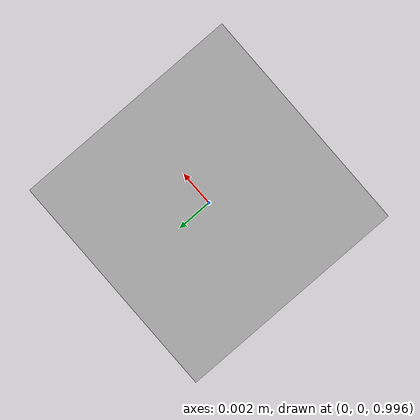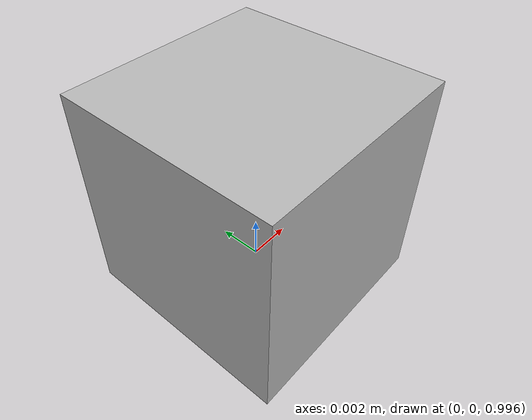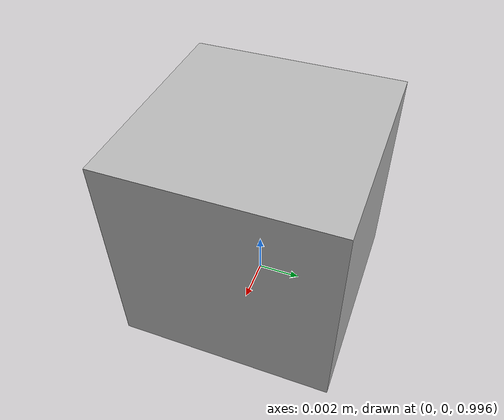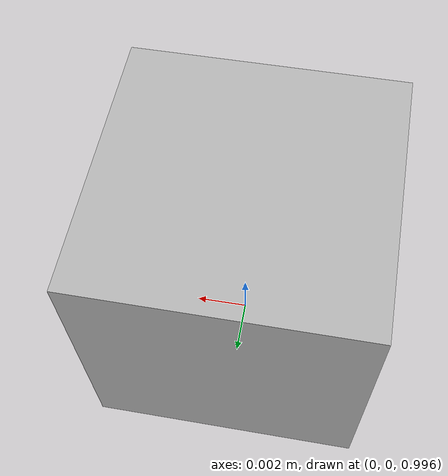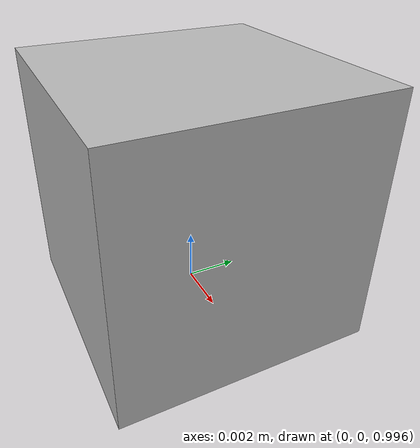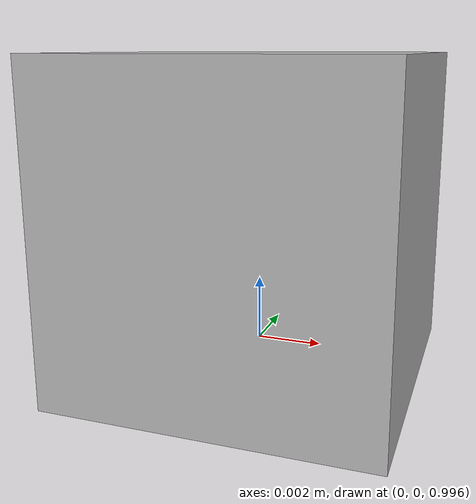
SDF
<?xml version="1.0"?>
<sdf version="1.8">
    <world name="light_test">
        <physics name="1ms" type="ignored">
                <max_step_size>0.001</max_step_size>
                <real_time_factor>1.0</real_time_factor>
        </physics>

        <plugin
            filename="libignition-gazebo-physics-system.so"
            name="ignition::gazebo::systems::Physics">
        </plugin>
        <plugin
            filename="libignition-gazebo-user-commands-system.so"
            name="ignition::gazebo::systems::UserCommands">
        </plugin>
        <plugin
            filename="libignition-gazebo-scene-broadcaster-system.so"
            name="ignition::gazebo::systems::SceneBroadcaster">
        </plugin>

        <gui fullscreen="0">
            <plugin filename="GzScene3D" name="3D View">
                <ignition-gui>
                    <tiltle>3D View</tiltle>
                    <property type="bool" key="showTiltleBar">fasle</property>
                    <property type="string" key="state">docked</property>
                </ignition-gui>

                <engine>ogre2</engine>
                <scene>scene</scene>
                <ambient_light>0.4 0.4 0.4</ambient_light>
                <background_color>0.8 0.8 0.8</background_color>
            </plugin>

            <!--World control-->
            <plugin filename="WorldControl" name="World control">
                <ignition-gui>
                    <title>World control</title>
                    <property type="bool" key="showTiltleBar">false</property>
                    <property type="bool" key="resizable">false</property>
                    <property type="double" key="height">72</property>
                    <property type="double" key="width">121</property>
                    <property type="double" key="z">1</property>

                    <property type="string" key="state">floating</property>
                    <anchors target="3D View">
                        <line own="left" target="left"/>
                        <line own="bottom" target="bottom"/>
                    </anchors>
                </ignition-gui>

                <play_pause>true</play_pause>
                <step>true</step>
                <start_paused>true</start_paused>
                <service>/world/light_test/control</service>
                <stats_topic>/world/light_test/stats</stats_topic>

            </plugin>
            <!--World statistics-->
            <plugin filename="WorldStats" name="World stats">
                <ignition-gui>
                    <title>World stats</title>
                    <property type="bool" key="showTiltleBar">false</property>
                    <property type="bool" key="resizable">false</property>
                    <property type="double" key="height">110</property>
                    <property type="double" key="width">290</property>
                    <property type="double" key="z">1</property>

                    <property type="string" key="state">floating</property>
                    <anchors target="3D View">
                        <line own="right" target="right"/>
                        <line own="bottom" target="bottom"/>
                    </anchors>
                </ignition-gui>

                <sim_time>true</sim_time>
                <real_time>true</real_time>
                <real_time_factor>true</real_time_factor>
                <iterations>true</iterations>
                <topic>/world/light_test/stats</topic>

            </plugin>

            <!--Entity Tree-->
            <plugin filename="EntityTree" name="Entity tree">
            </plugin>

        </gui>
        <light type="directional" name="sun">
            <cast_shadows>true</cast_shadows>
            <pose>0 0 10 0 0 0</pose> <!--[Position] [Orientation]-->
            <diffuse>0.128 0.128 0.128 1</diffuse>
            <specular>0.2 0.2 0.2 1</specular>

            <attenuation>
                <range>1000</range>
                <constant>0.9</constant>    <!--attenuation val, 0 is complete attenuation-->
                <linear>0.9</linear>       <!--1 is attenuate equally, so light won't fade out in the edges (no more edging :< )-->
                <quadratic>0.001</quadratic> <!--Add curvature to attenuation-->
            </attenuation>
            <direction>-0.5 0.1 -0.9</direction>
        </light>

        <include>
        <uri>
        https://fuel.gazebosim.org/1.0/OpenRobotics/models/Ground Plane
        </uri>
        </include>

        <model name="box">
            <pose>0 0 1 0 0 0</pose>
            <link name="link_1">
                <collision name="collision">
                    <geometry>
                        <box>
                            <size>0.01 0.01 0.01</size>
                        </box>
                    </geometry>
                </collision>

                <visual name="visual">
                    <geometry>
                        <box>
                            <size>0.01 0.01 0.01</size>
                        </box>
                    </geometry>
                </visual>

                <gravity>0</gravity>

                <light name='user_spot_light_1' type='spot'>
                    <pose frame=''>0 0 0 0 -0 0</pose>
                    <diffuse>0.5 0.5 0.5 1</diffuse>
                    <specular>0.1 0.1 0.1 1</specular>
                    <direction>0 0 -1</direction>
                    <attenuation>
                        <range>20</range>
                        <constant>0.1</constant>
                        <linear>0.01</linear>
                        <quadratic>0.001</quadratic>
                    </attenuation>
                    <cast_shadows>0</cast_shadows>
                    <spot>
                        <inner_angle>0.6</inner_angle>
                        <outer_angle>1</outer_angle>
                        <falloff>1</falloff>
                    </spot>
                </light>
            </link>

        </model>
    </world>
</sdf>
